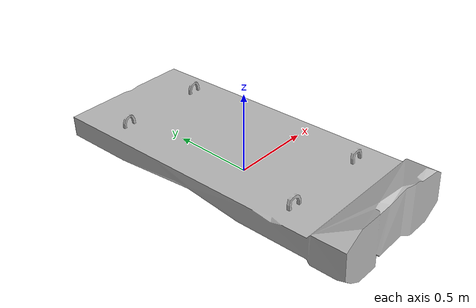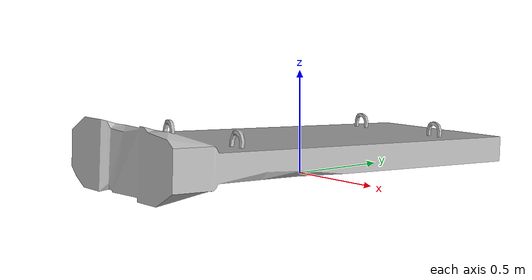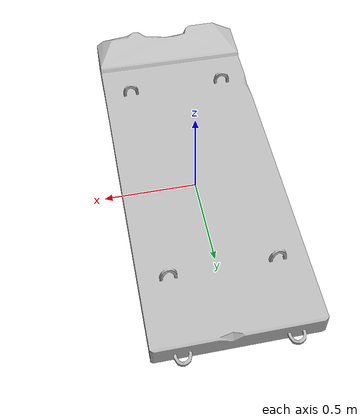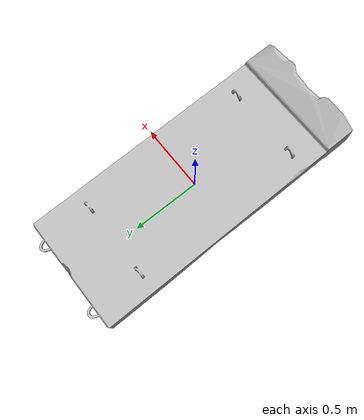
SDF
<?xml version="1.0" ?>
<sdf version="1.4">
	<model name="concrete_wall">
		<static>true</static>
		<link name="link">
			<pose>0 -1 0.165 -1.6158 0 0</pose>
			<collision name="collision">
				<geometry>
					<mesh>
						<uri>model://concrete_wall/mesh/concrete_wall.dae</uri>
						<scale>0.015 0.015 0.015</scale>
					</mesh>
				</geometry>
				<surface>
					<bounce>
						<restitution_coefficient>0.01</restitution_coefficient>
						<threshold>5.0</threshold>
					</bounce>
					<friction>
						<ode>
							<mu>10</mu>
							<mu2>10</mu2>
						</ode>
					</friction>
					<contact>
						<ode>
							<soft_cfm>0.001</soft_cfm>
							<kp>100000.0</kp>
							<kd>1000.0</kd>
						</ode>
					</contact>
				</surface>
			</collision>
			<visual name="visual">
				<geometry>
					<mesh>
						<uri>model://concrete_wall/mesh/concrete_wall.dae</uri>
						<scale>0.015 0.015 0.015</scale>
					</mesh>
				</geometry>
			</visual>
		</link>
	</model>
</sdf>
